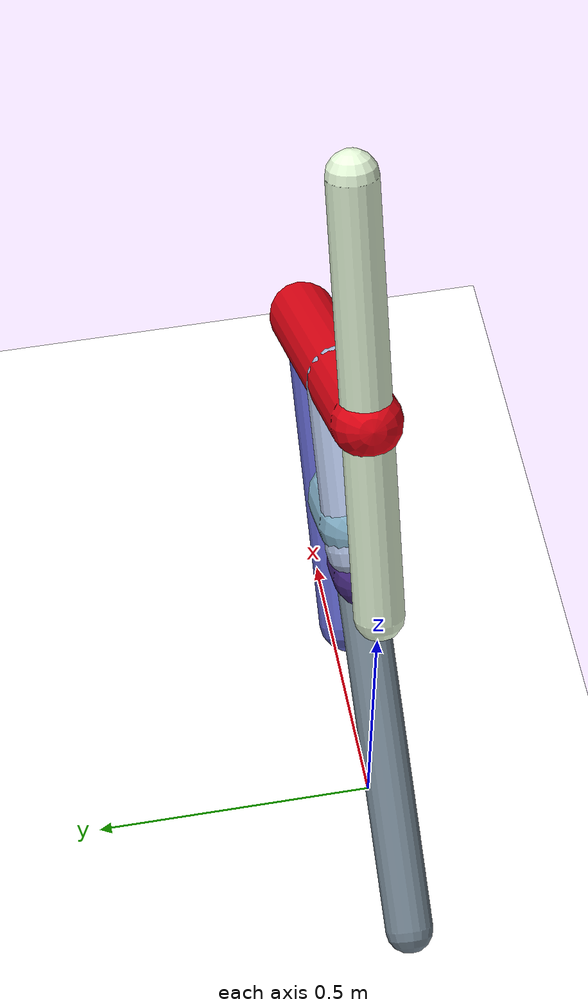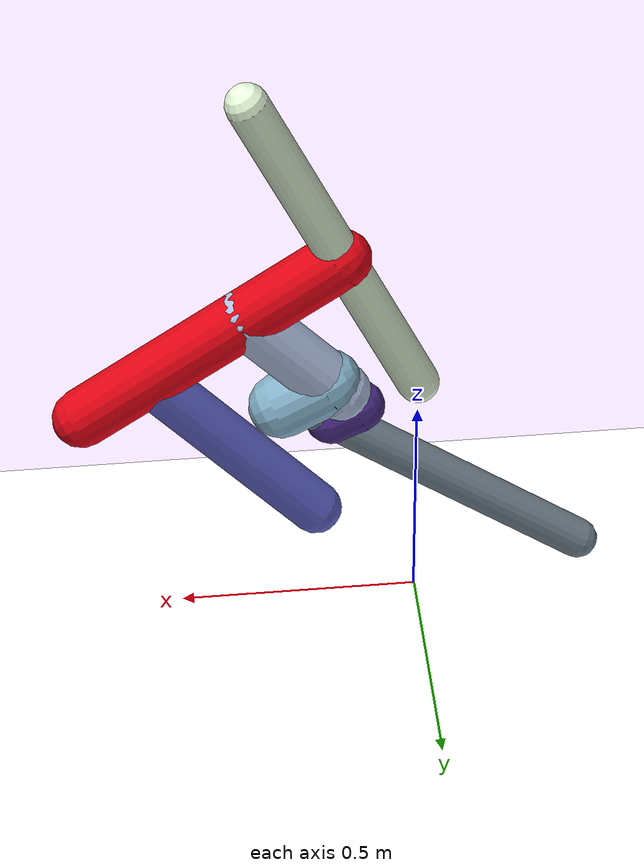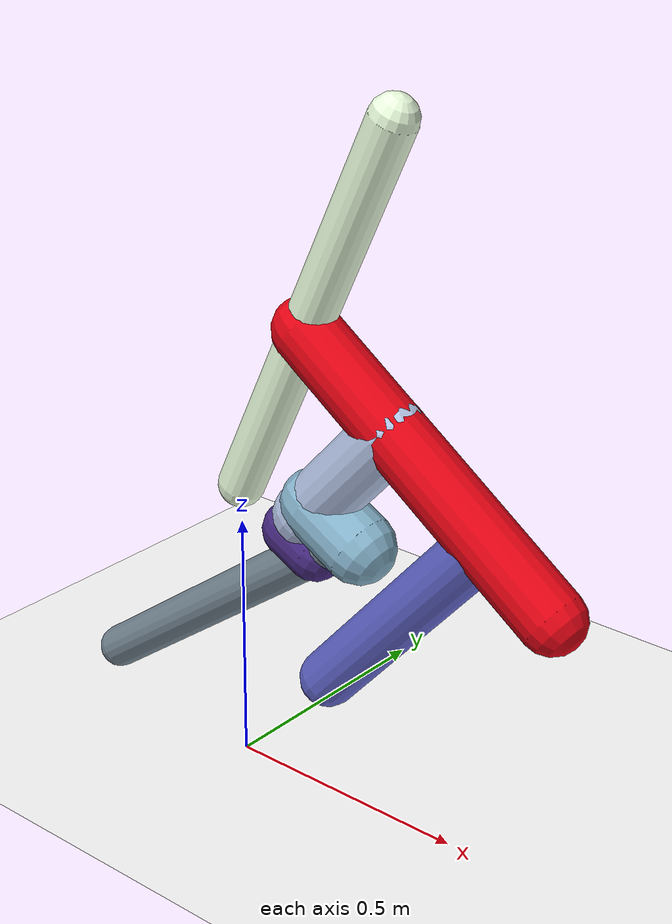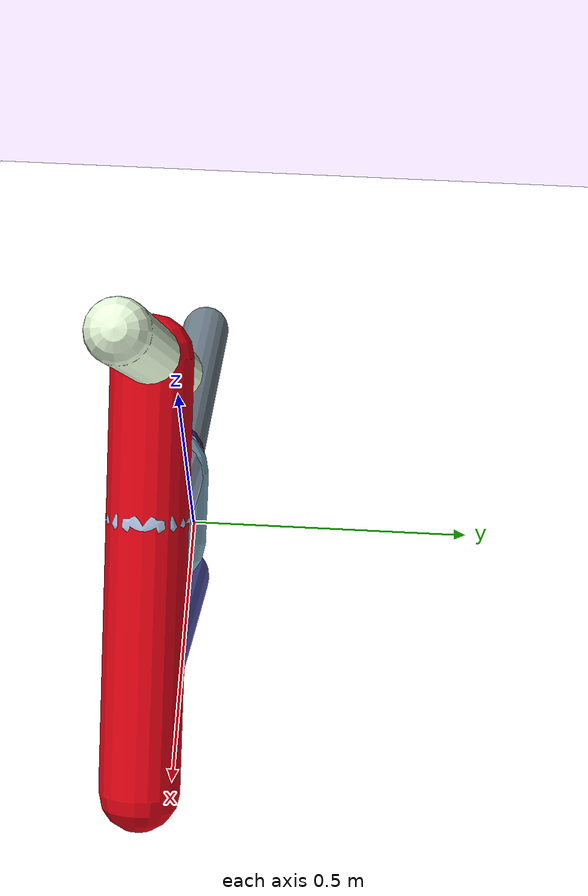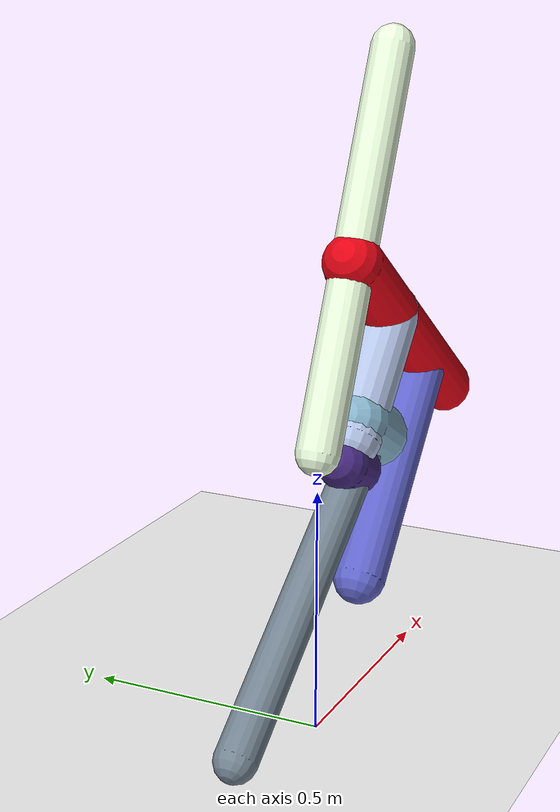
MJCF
<mujoco model="morphology">
  <option timestep="0.01"/>
  <default>
    <default class="/"/>
    <default class="0/"/>
    <default class="0/1/"/>
    <default class="0/1/2/"/>
    <default class="0/1/3/"/>
    <default class="0/1/3/4/"/>
    <default class="0/1/3/4/5/"/>
    <default class="0/1/3/4/5/6/"/>
  </default>
  <asset>
    <texture name="texplane" type="2d" builtin="checker" rgb1="0.10000000000000001 0.20000000000000001 0.29999999999999999" rgb2="0.20000000000000001 0.29999999999999999 0.40000000000000002" width="300" height="300"/>
    <material name="MatPlane" class="/" texture="texplane" texrepeat="20 20" specular="1" shininess="1" reflectance="0.5"/>
  </asset>
  <worldbody>
    <light name="//unnamed_light_0" class="/" directional="true" pos="0 0 1.5" dir="0 0 -1.3" cutoff="100" exponent="1" diffuse="1 1 1" specular="0.10000000000000001 0.10000000000000001 0.10000000000000001"/>
    <geom name="ground" class="/" type="plane" size="15 15 0.5" material="MatPlane" rgba="1 1 1 1"/>
    <site name="body" class="/" size="9.9999999999999995e-07 9.9999999999999995e-07 9.9999999999999995e-07" pos="0 0 0.57875213623046873"/>
    <body pos="0 0 0.57875213623046873" name="0/">
      <joint name="0/rootx/" class="/" type="slide" axis="1 0 0" limited="false" stiffness="0" armature="0" damping="0"/>
      <joint name="0/rootz/" class="/" type="slide" axis="0 0 1" limited="false" stiffness="0" armature="0" damping="0"/>
      <joint name="0/rooty/" class="/" type="hinge" axis="0 1 0" limited="false" stiffness="0" armature="0" damping="0"/>
      <geom name="0/geom" class="0/" type="capsule" contype="1" conaffinity="1" condim="3" size="0.044632162204834215" rgba="0.91909982094979348 0.99688290039982252 0.87106414619213646 1" friction="0.59999999999999998 0.10000000000000001 0.10000000000000001" fromto="0 0 0 0.34492879993801706 0 0.74383020930913468"/>
      <site name="0/end0" class="0/" size="0.0050000000000000001" pos="0.34492879993801706 0 0.74383020930913468"/>
      <site name="0/attach1" class="0/" size="9.9999999999999995e-07 9.9999999999999995e-07 9.9999999999999995e-07" pos="0.15833437296021693 0 0.34144405976245668"/>
      <body pos="0.15833437296021693 0 0.34144405976245668" name="0/1/">
        <joint name="0/1/joint/" class="0/" type="hinge" axis="0 1 0" limited="true" range="-60.308735670664035 60.308735670664035"/>
        <geom name="0/1/geom" class="0/1/" type="capsule" contype="1" conaffinity="1" condim="3" size="0.061444584570307541" rgba="0.90072136281151449 0.014129434105768612 0.08004830786831485 1" friction="0.59999999999999998 0.10000000000000001 0.10000000000000001" fromto="0 0 0 0.53786122270283121 0 -0.38051434471148571"/>
        <site name="0/1/end1" class="0/1/" size="0.0050000000000000001" pos="0.53786122270283121 0 -0.38051434471148571"/>
        <site name="0/1/attach2" class="0/1/" size="9.9999999999999995e-07 9.9999999999999995e-07 9.9999999999999995e-07" pos="0.3982812983531554 0 -0.28176737949637082"/>
        <body pos="0.3982812983531554 0 -0.28176737949637082" name="0/1/2/">
          <joint name="0/1/2/joint/" class="0/1/" type="hinge" axis="0 1 0" limited="true" range="-45.070540508934243 45.070540508934243"/>
          <geom name="0/1/2/geom" class="0/1/2/" type="capsule" contype="1" conaffinity="1" condim="3" size="0.055333906055091663" rgba="0.38133511304813283 0.40041217735477896 0.79500673767726449 1" friction="0.59999999999999998 0.10000000000000001 0.10000000000000001" fromto="0 0 0 -0.3435136195494885 0 -0.39546936132864641"/>
          <site name="0/1/2/end2" class="0/1/2/" size="0.0050000000000000001" pos="-0.3435136195494885 0 -0.39546936132864641"/>
        </body>
        <site name="0/1/attach3" class="0/1/" size="9.9999999999999995e-07 9.9999999999999995e-07 9.9999999999999995e-07" pos="0.19588958664127412 0 -0.1385836988248379"/>
        <body pos="0.19588958664127412 0 -0.1385836988248379" name="0/1/3/">
          <geom name="0/1/3/geom" class="0/1/3/" type="capsule" contype="1" conaffinity="1" condim="3" size="0.062334185332199948" rgba="0.70889046583680193 0.77173719777988603 0.90586115231544306 1" friction="0.59999999999999998 0.10000000000000001 0.10000000000000001" fromto="0 0 0 -0.19591621487850464 0 -0.21751459895096181"/>
          <site name="0/1/3/end3" class="0/1/3/" size="0.0050000000000000001" pos="-0.19591621487850464 0 -0.21751459895096181"/>
          <site name="0/1/3/attach4" class="0/1/3/" size="9.9999999999999995e-07 9.9999999999999995e-07 9.9999999999999995e-07" pos="-0.16896557250638722 0 -0.18759283790286646"/>
          <body pos="-0.16896557250638722 0 -0.18759283790286646" name="0/1/3/4/">
            <geom name="0/1/3/4/geom" class="0/1/3/4/" type="capsule" contype="1" conaffinity="1" condim="3" size="0.068763891301538385" rgba="0.52277743882088612 0.69975481753593327 0.79550555978324289 1" friction="0.59999999999999998 0.10000000000000001 0.10000000000000001" fromto="0 0 0 0.098347976966603801 0 -0.055279632331513451"/>
            <site name="0/1/3/4/end4" class="0/1/3/4/" size="0.0050000000000000001" pos="0.098347976966603801 0 -0.055279632331513451"/>
            <site name="0/1/3/4/attach5" class="0/1/3/4/" size="9.9999999999999995e-07 9.9999999999999995e-07 9.9999999999999995e-07" pos="0.073793662100250401 0 -0.041478092738836833"/>
            <body pos="0.073793662100250401 0 -0.041478092738836833" name="0/1/3/4/5/">
              <geom name="0/1/3/4/5/geom" class="0/1/3/4/5/" type="capsule" contype="1" conaffinity="1" condim="3" size="0.042456706282051608" rgba="0.45256036624256346 0.51897418251531968 0.57018778328764808 1" friction="0.59999999999999998 0.10000000000000001 0.10000000000000001" fromto="0 0 0 -0.61038020566821671 0 -0.45254155868147911"/>
              <site name="0/1/3/4/5/end5" class="0/1/3/4/5/" size="0.0050000000000000001" pos="-0.61038020566821671 0 -0.45254155868147911"/>
              <site name="0/1/3/4/5/attach6" class="0/1/3/4/5/" size="9.9999999999999995e-07 9.9999999999999995e-07 9.9999999999999995e-07" pos="-0.078640247949348929 0 -0.058304610882877896"/>
              <body pos="-0.078640247949348929 0 -0.058304610882877896" name="0/1/3/4/5/6/">
                <joint name="0/1/3/4/5/6/joint/" class="0/1/3/4/5/" type="hinge" axis="0 1 0" limited="true" range="-50.400615931318391 50.400615931318391"/>
                <geom name="0/1/3/4/5/6/geom" class="0/1/3/4/5/6/" type="capsule" contype="1" conaffinity="1" condim="3" size="0.054229455829199164" rgba="0.27736403163783796 0.16304972959133557 0.50707368720153168 1" friction="0.59999999999999998 0.10000000000000001 0.10000000000000001" fromto="0 0 0 -0.058299677326098864 0 0.028691098524017633"/>
                <site name="0/1/3/4/5/6/end6" class="0/1/3/4/5/6/" size="0.0050000000000000001" pos="-0.058299677326098864 0 0.028691098524017633"/>
              </body>
            </body>
          </body>
        </body>
      </body>
      <camera name="0/side" class="0/" mode="trackcom" pos="0.40000000000000002 -4 0.20000000000000001" quat="0.70699999999999996 0.70699999999999996 0 0"/>
    </body>
  </worldbody>
  <actuator>
    <motor name="0/1/motor" class="0/1/" ctrllimited="true" ctrlrange="-1 1" gear="68" joint="0/1/joint/"/>
    <motor name="0/1/2/motor" class="0/1/2/" ctrllimited="true" ctrlrange="-1 1" gear="69" joint="0/1/2/joint/"/>
    <motor name="0/1/3/4/5/6/motor" class="0/1/3/4/5/6/" ctrllimited="true" ctrlrange="-1 1" gear="80" joint="0/1/3/4/5/6/joint/"/>
  </actuator>
  <sensor>
    <subtreelinvel name="velocity" body="0/"/>
  </sensor>
</mujoco>
